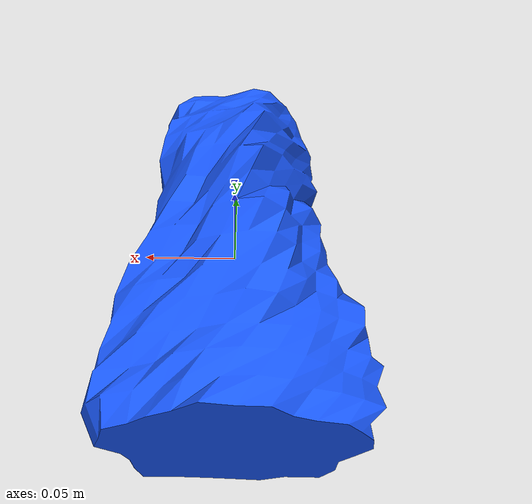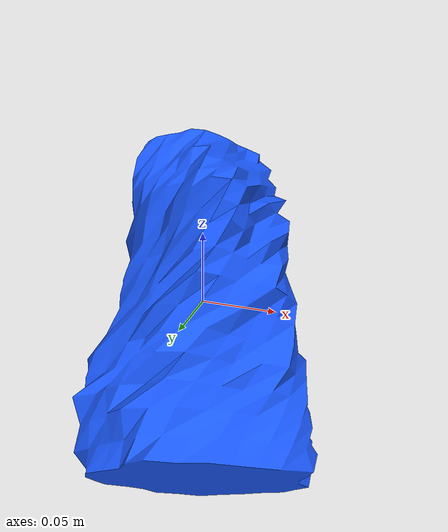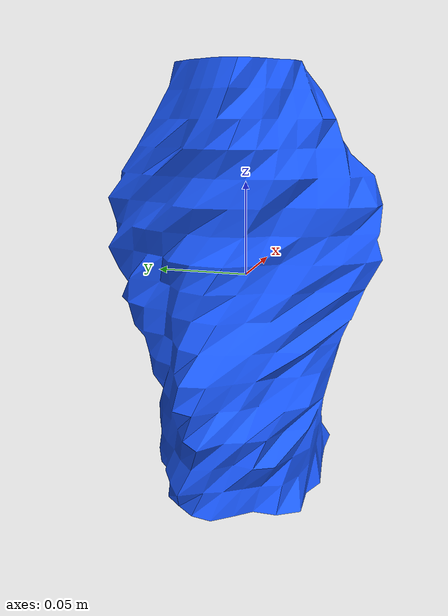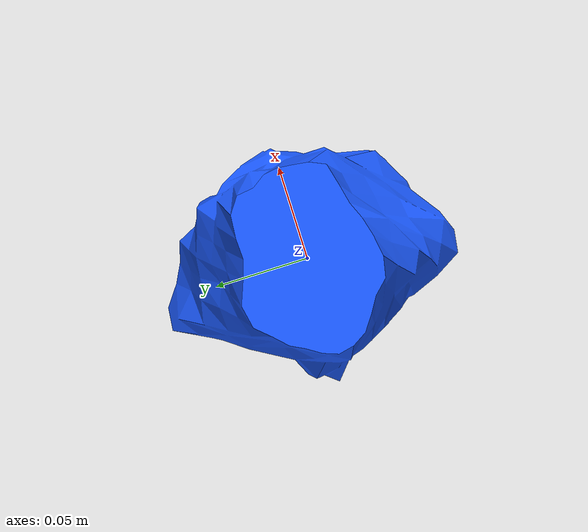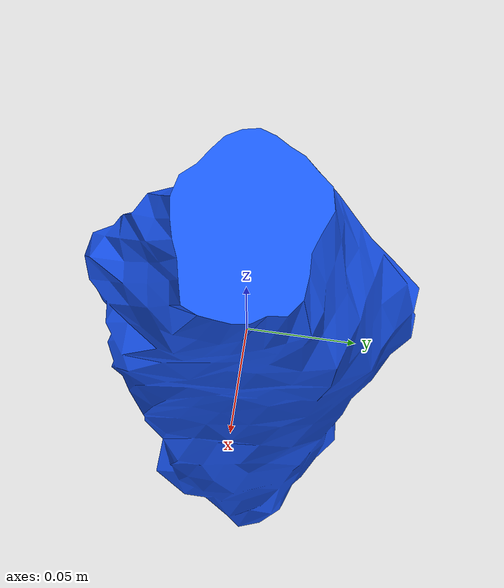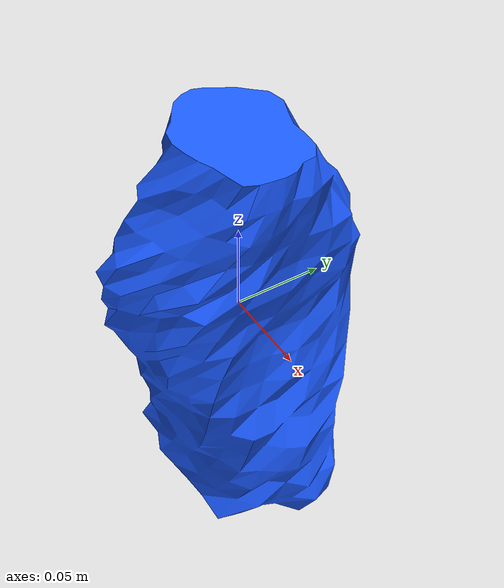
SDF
<?xml version="1.0"?>
<sdf version="1.6">
  <model name="waste_plastic_deformed_bottle">
    <static>false</static>
    <allow_auto_disable>false</allow_auto_disable>

    <link name="link">
      <pose>0 0 0 0 0 0</pose>

      <inertial>
        <mass>0.06</mass>
        <inertia>
          <ixx>0.0008</ixx>
          <iyy>0.0008</iyy>
          <izz>0.0008</izz>
          <ixy>0</ixy>
          <ixz>0</ixz>
          <iyz>0</iyz>
        </inertia>
      </inertial>

      <!--
        Simplified collision is used for stability.
        Visual mesh gives realistic shape, collision box keeps Gazebo physics robust.
      -->
      <collision name="collision">
        <geometry>
          <box>
            <size>0.16 0.13 0.23</size>
          </box>
        </geometry>
        <surface>
          <friction>
            <ode>
              <mu>8.0</mu>
              <mu2>8.0</mu2>
            </ode>
          </friction>
        </surface>
      </collision>

      <visual name="visual">
        <geometry>
          <mesh>
            <uri>model://realistic_waste/waste_plastic_deformed_bottle/meshes/plastic_deformed_bottle.obj</uri>
            <scale>1 1 1</scale>
          </mesh>
        </geometry>
        <material>
          <ambient>0.1 0.35 1.0 1.0</ambient>
          <diffuse>0.1 0.35 1.0 1.0</diffuse>
          <specular>0.15 0.15 0.15 1</specular>
        </material>
      </visual>
    </link>
  </model>
</sdf>
